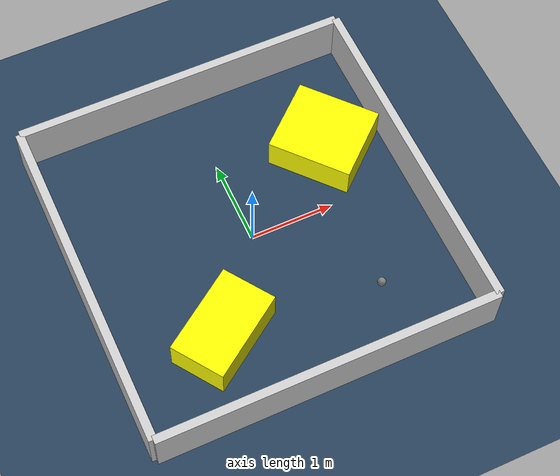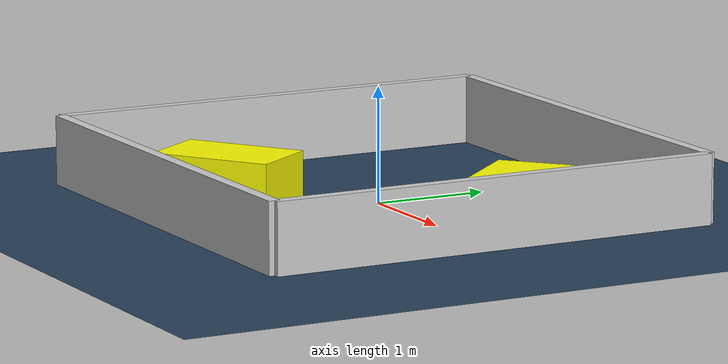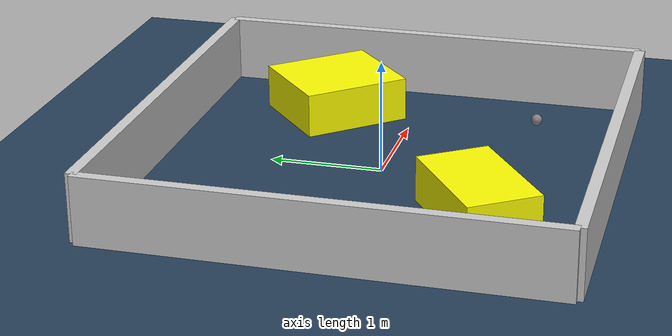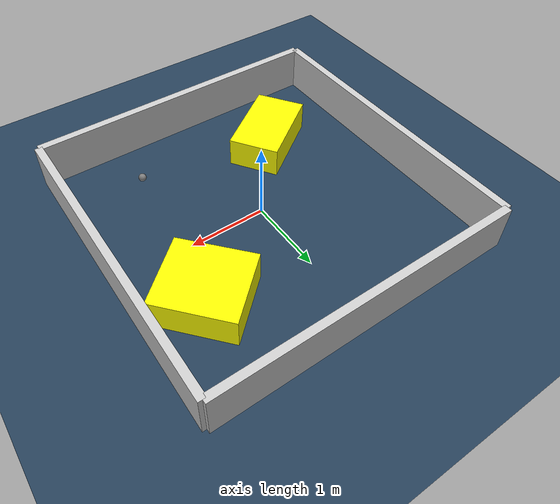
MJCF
<?xml version="1.0" ?>
<mujoco model="generated_environment">
  <option timestep="0.01" integrator="RK4" cone="elliptic"/>
  <default>
    <geom density="1"/>
  </default>
  <asset>
    <texture builtin="gradient" height="3072" rgb1="0.3 0.5 0.7" rgb2="0 0 0" type="skybox" width="512"/>
    <texture builtin="checker" height="300" mark="edge" markrgb="0.8 0.8 0.8" name="groundplane" rgb1="0.2 0.3 0.4" rgb2="0.1 0.2 0.3" type="2d" width="300"/>
    <material name="groundplane" reflectance="0.2" texrepeat="5 5" texture="groundplane" texuniform="true"/>
    <material name="robot" rgba="0.0 1.0 0.0 1"/>
  </asset>
  <worldbody>
    <light dir="0 0 -1" directional="true" pos="0 0 1.5"/>
    <geom condim="4" friction="1.0 0.005 0.001" material="groundplane" name="floor" size="0 0 0.05" type="plane"/>
    <body name="walls">
      <geom name="wall_1" condim="4" pos="-2.0 0.0 0.3" rgba="0.800000011920929 0.800000011920929 0.800000011920929 1.0" size="0.05 2.0 0.3" type="box"/>
      <geom name="wall_2" condim="4" pos="2.0 0.0 0.3" rgba="0.800000011920929 0.800000011920929 0.800000011920929 1.0" size="0.05 2.0 0.3" type="box"/>
      <geom name="wall_3" condim="4" pos="0.0 -2.0 0.3" rgba="0.800000011920929 0.800000011920929 0.800000011920929 1.0" size="2.0 0.05 0.3" type="box"/>
      <geom name="wall_4" condim="4" pos="0.0 2.0 0.3" rgba="0.800000011920929 0.800000011920929 0.800000011920929 1.0" size="2.0 0.05 0.3" type="box"/>
    </body>
    <body name="robot">
      <joint name="joint_x" type="slide" pos="0 0 0" axis="1 0 0"/>
      <joint name="joint_y" type="slide" pos="0 0 0" axis="0 1 0"/>
      <geom name="robot" type="sphere" pos="1.0257486260482946 -1.1954899034688955 0.2" size="0.05" mass="5." friction="1.0 0.005 0.0001" condim="4"/>
      <site name="sensor_ball"/>
    </body>
    <body name="obstacle_1_movable">
      <geom name="obstacle_1_movable" condim="4" pos="-0.796807021353278 -1.008994209004367 0.2" euler="0 0 34.74765749374834" friction="1.0 0.005 0.001" rgba="1 1 0 1" size="0.543039738474081 0.32940622977743994 0.2" type="box" mass="0.1"/>
      <joint type="free"/>
    </body>
    <body name="obstacle_2_movable">
      <geom name="obstacle_2_movable" condim="4" pos="1.2576550904497457 0.7578632047751319 0.2" euler="0 0 311.42233479801746" friction="1.0 0.005 0.001" rgba="1 1 0 1" size="0.4994408495595829 0.45703845730401144 0.2" type="box" mass="0.1"/>
      <joint type="free"/>
    </body>
  </worldbody>
  <actuator>
    <motor name="actuator_x" joint="joint_x" gear="1" ctrlrange="-1 1"/>
    <motor name="actuator_y" joint="joint_y" gear="1" ctrlrange="-1 1"/>
  </actuator>
</mujoco>
